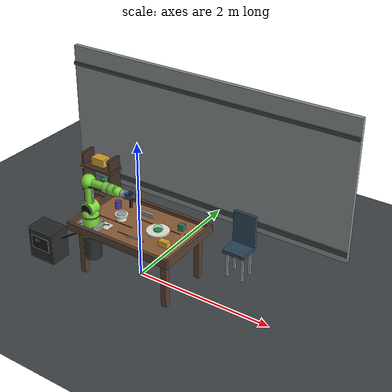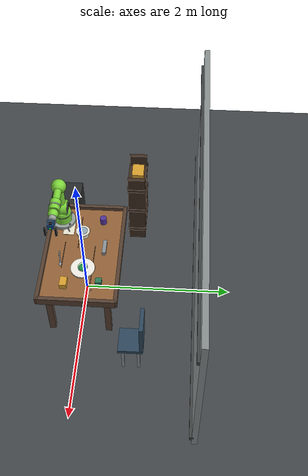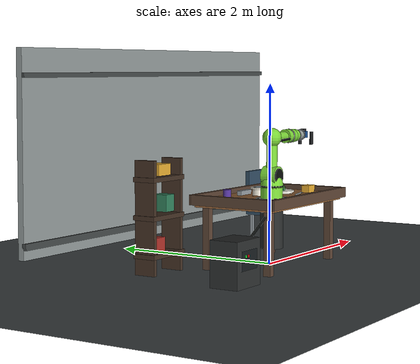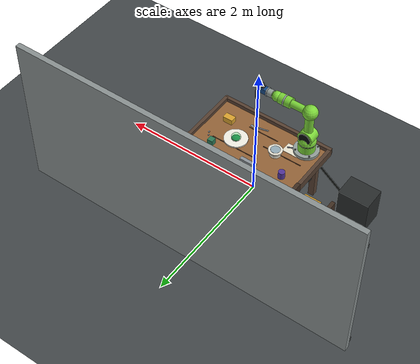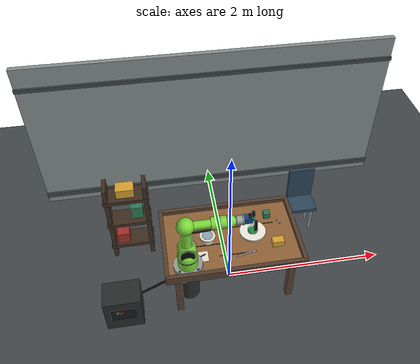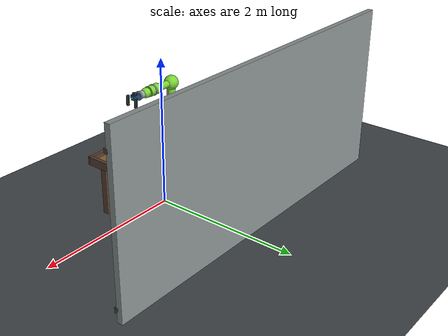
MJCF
<mujoco model="table_bowl_pick_place">
  <compiler angle="degree" inertiafromgeom="true"/>
  <option timestep="0.002" integrator="RK4" gravity="0 0 -9.81"/>

  <visual>
    <headlight diffuse="0.6 0.6 0.6" ambient="0.25 0.25 0.25" specular="0.2 0.2 0.2"/>
    <rgba haze="0.72 0.82 0.92 1"/>
    <global azimuth="145" elevation="-25" offwidth="1400" offheight="900"/>
  </visual>

  <asset>
    <texture name="grid" type="2d" builtin="checker" width="512" height="512" rgb1="0.22 0.24 0.25" rgb2="0.3 0.32 0.33"/>
    <material name="floor_mat" texture="grid" texrepeat="5 5" reflectance="0.0"/>
    <material name="table_mat" rgba="0.58 0.39 0.22 1"/>
    <material name="table_edge_mat" rgba="0.34 0.25 0.19 1"/>
    <material name="metal_mat" rgba="0.55 0.58 0.6 1" specular="0.35" shininess="0.55"/>
    <material name="fanuc_green" rgba="0.48 0.83 0.22 1" specular="0.28" shininess="0.45"/>
    <material name="fanuc_dark" rgba="0.035 0.045 0.04 1" specular="0.15" shininess="0.3"/>
    <material name="fanuc_joint_gray" rgba="0.58 0.62 0.6 1" specular="0.25" shininess="0.45"/>
    <material name="robot_blue" rgba="0.08 0.28 0.52 1" specular="0.25" shininess="0.5"/>
    <material name="rubber_mat" rgba="0.04 0.045 0.05 1"/>
    <material name="bowl_mat" rgba="0.92 0.9 0.84 1" specular="0.25" shininess="0.45"/>
    <material name="bowl_inner_mat" rgba="0.58 0.67 0.72 1"/>
    <material name="plate_mat" rgba="0.95 0.94 0.9 1" specular="0.2" shininess="0.35"/>
    <material name="target_mat" rgba="0.15 0.52 0.32 1"/>
    <material name="box_red" rgba="0.65 0.18 0.15 1"/>
    <material name="box_yellow" rgba="0.86 0.64 0.18 1"/>
    <material name="box_green" rgba="0.18 0.48 0.34 1"/>
    <material name="dark_wood" rgba="0.25 0.18 0.13 1"/>
    <material name="paper_mat" rgba="0.92 0.9 0.82 1"/>
    <material name="wall_mat" rgba="0.54 0.57 0.57 1"/>
  </asset>

  <worldbody>
    <geom name="floor" type="plane" size="4 4 0.05" material="floor_mat"/>
    <light name="key_light" pos="-1.8 -2.4 3.2" dir="0.5 0.65 -1" diffuse="0.95 0.95 0.9" specular="0.35 0.35 0.32"/>
    <light name="fill_light" pos="2 1.8 2.2" dir="-0.5 -0.4 -1" diffuse="0.35 0.42 0.48"/>

    <camera name="overview" pos="2.95 -3.85 2.55" xyaxes="0.80 0.60 0 -0.32 0.43 0.84" fovy="54"/>
    <camera name="front" pos="0 -2.2 1.15" xyaxes="1 0 0 0 0.37 0.93"/>

    <body name="background_wall" pos="0 1.55 0.82">
      <geom name="back_wall_panel" type="box" pos="0 0 0.48" size="2.35 0.035 1.08" material="wall_mat" contype="0" conaffinity="0"/>
      <geom name="wall_trim_low" type="box" pos="0 -0.04 -0.46" size="2.35 0.025 0.035" rgba="0.25 0.27 0.27 1" contype="0" conaffinity="0"/>
      <geom name="wall_trim_high" type="box" pos="0 -0.04 1.28" size="2.35 0.025 0.025" rgba="0.25 0.27 0.27 1" contype="0" conaffinity="0"/>
    </body>

    <body name="table" pos="0 0 0">
      <geom name="tabletop" type="box" pos="0 0 0.72" size="0.78 0.48 0.04" material="table_mat" friction="0.9 0.02 0.001"/>
      <geom name="front_edge" type="box" pos="0 -0.5 0.76" size="0.82 0.025 0.055" material="table_edge_mat"/>
      <geom name="back_edge" type="box" pos="0 0.5 0.76" size="0.82 0.025 0.055" material="table_edge_mat"/>
      <geom name="left_edge" type="box" pos="-0.8 0 0.76" size="0.025 0.5 0.055" material="table_edge_mat"/>
      <geom name="right_edge" type="box" pos="0.8 0 0.76" size="0.025 0.5 0.055" material="table_edge_mat"/>
      <geom name="leg_fl" type="box" pos="-0.68 -0.38 0.36" size="0.04 0.04 0.36" material="table_edge_mat"/>
      <geom name="leg_fr" type="box" pos="0.68 -0.38 0.36" size="0.04 0.04 0.36" material="table_edge_mat"/>
      <geom name="leg_bl" type="box" pos="-0.68 0.38 0.36" size="0.04 0.04 0.36" material="table_edge_mat"/>
      <geom name="leg_br" type="box" pos="0.68 0.38 0.36" size="0.04 0.04 0.36" material="table_edge_mat"/>
      <geom name="wood_grain_1" type="box" pos="-0.35 -0.08 0.763" size="0.28 0.004 0.003" rgba="0.36 0.24 0.14 1" contype="0" conaffinity="0"/>
      <geom name="wood_grain_2" type="box" pos="0.22 0.15 0.763" size="0.34 0.004 0.003" rgba="0.36 0.24 0.14 1" contype="0" conaffinity="0"/>
      <geom name="wood_grain_3" type="box" pos="0.05 -0.26 0.763" size="0.22 0.004 0.003" rgba="0.36 0.24 0.14 1" contype="0" conaffinity="0"/>
    </body>

    <body name="plate" pos="0.28 0.03 0.765">
      <geom name="plate_base" type="cylinder" pos="0 0 0.008" size="0.14 0.008" material="plate_mat" contype="1" conaffinity="1"/>
      <geom name="plate_rim" type="cylinder" pos="0 0 0.023" size="0.16 0.01" material="plate_mat" contype="0" conaffinity="0"/>
      <geom name="target_marker" type="cylinder" pos="0 0 0.035" size="0.055 0.003" material="target_mat" contype="0" conaffinity="0"/>
      <site name="success_target" pos="0 0 0.045" size="0.065" rgba="0.0 0.8 0.2 0.28"/>
    </body>

    <body name="bowl" pos="-0.28 -0.03 0.795">
      <freejoint name="bowl_free"/>
      <geom name="bowl_collision" type="cylinder" pos="0 0 0.035" size="0.075 0.035" material="bowl_mat" mass="0.08" friction="0.95 0.02 0.001"/>
      <geom name="bowl_rim" type="cylinder" pos="0 0 0.078" size="0.095 0.009" material="bowl_mat" contype="0" conaffinity="0"/>
      <geom name="bowl_inner" type="cylinder" pos="0 0 0.086" size="0.064 0.004" material="bowl_inner_mat" contype="0" conaffinity="0"/>
    </body>

    <body name="fanuc_cr7ial" pos="-0.55 -0.34 0.76">
      <geom name="fanuc_pedestal" type="cylinder" pos="0 0 -0.24" size="0.12 0.24" rgba="0.16 0.17 0.17 1"/>
      <geom name="fanuc_base_plate" type="cylinder" pos="0 0 0.015" size="0.17 0.03" material="fanuc_joint_gray" contype="0" conaffinity="0"/>
      <geom name="fanuc_base_green" type="cylinder" pos="0 0 0.095" size="0.115 0.075" material="fanuc_green" contype="0" conaffinity="0"/>
      <geom name="fanuc_base_black_ring" type="cylinder" pos="0 0 0.178" size="0.118 0.012" material="fanuc_dark" contype="0" conaffinity="0"/>
      <geom name="fanuc_bolt_1" type="cylinder" pos="0.105 0.105 0.052" size="0.012 0.006" material="fanuc_dark" contype="0" conaffinity="0"/>
      <geom name="fanuc_bolt_2" type="cylinder" pos="-0.105 0.105 0.052" size="0.012 0.006" material="fanuc_dark" contype="0" conaffinity="0"/>
      <geom name="fanuc_bolt_3" type="cylinder" pos="0.105 -0.105 0.052" size="0.012 0.006" material="fanuc_dark" contype="0" conaffinity="0"/>
      <geom name="fanuc_bolt_4" type="cylinder" pos="-0.105 -0.105 0.052" size="0.012 0.006" material="fanuc_dark" contype="0" conaffinity="0"/>

      <body name="fanuc_joint_1" pos="0 0 0.16">
        <joint name="j1" type="hinge" axis="0 0 1" range="-170 170" limited="true" damping="35" armature="0.05"/>
        <geom name="j1_cover" type="sphere" pos="0 0 0.03" size="0.12" material="fanuc_green" contype="0" conaffinity="0"/>
        <geom name="j1_flat_front" type="box" pos="0.072 -0.028 0.025" size="0.034 0.008 0.052" rgba="0.75 0.82 0.72 1" contype="0" conaffinity="0"/>

        <body name="fanuc_joint_2" pos="0 0 0.12">
          <joint name="j2" type="hinge" axis="0 1 0" range="-95 145" limited="true" damping="38" armature="0.05"/>
          <geom name="j2_cover" type="cylinder" pos="0 0 0" euler="90 0 0" size="0.105 0.08" material="fanuc_green" contype="0" conaffinity="0"/>
          <geom name="j2_dark_cap_l" type="cylinder" pos="0 0.086 0" euler="90 0 0" size="0.082 0.006" material="fanuc_dark" contype="0" conaffinity="0"/>
          <geom name="j2_dark_cap_r" type="cylinder" pos="0 -0.086 0" euler="90 0 0" size="0.082 0.006" material="fanuc_dark" contype="0" conaffinity="0"/>
          <geom name="upper_arm" type="capsule" fromto="0 0 0.03 0 0 0.405" size="0.058" material="fanuc_green" contype="0" conaffinity="0"/>
          <geom name="upper_arm_side_panel" type="box" pos="0.055 -0.017 0.22" size="0.014 0.008 0.12" rgba="0.72 0.8 0.68 1" contype="0" conaffinity="0"/>

          <body name="fanuc_joint_3" pos="0 0 0.405">
            <joint name="j3" type="hinge" axis="0 1 0" range="-160 170" limited="true" damping="35" armature="0.045"/>
            <geom name="j3_cover" type="sphere" pos="0 0 0" size="0.1" material="fanuc_green" contype="0" conaffinity="0"/>
            <geom name="j3_dark_ring" type="cylinder" pos="0 -0.012 0" euler="90 0 0" size="0.086 0.006" material="fanuc_dark" contype="0" conaffinity="0"/>
            <geom name="forearm" type="capsule" fromto="0 0 0 0.355 0 0" size="0.05" material="fanuc_green" contype="0" conaffinity="0"/>
            <geom name="forearm_cable" type="capsule" fromto="-0.018 -0.065 -0.04 0.26 -0.065 -0.025" size="0.012" material="fanuc_dark" contype="0" conaffinity="0"/>

            <body name="fanuc_joint_4" pos="0.355 0 0">
              <joint name="j4" type="hinge" axis="1 0 0" range="-190 190" limited="true" damping="20" armature="0.025"/>
              <geom name="j4_cover" type="cylinder" pos="0 0 0" euler="0 90 0" size="0.072 0.085" material="fanuc_green" contype="0" conaffinity="0"/>
              <geom name="j4_gray_band" type="cylinder" pos="0.004 0 0" euler="0 90 0" size="0.076 0.01" material="fanuc_joint_gray" contype="0" conaffinity="0"/>
              <geom name="wrist_link_1" type="capsule" fromto="0 0 0 0.13 0 0" size="0.04" material="fanuc_green" contype="0" conaffinity="0"/>

              <body name="fanuc_joint_5" pos="0.13 0 0">
                <joint name="j5" type="hinge" axis="0 1 0" range="-140 140" limited="true" damping="20" armature="0.025"/>
                <geom name="j5_cover" type="sphere" pos="0 0 0" size="0.068" material="fanuc_green" contype="0" conaffinity="0"/>
                <geom name="j5_dark_cap" type="cylinder" pos="0 -0.012 0" euler="90 0 0" size="0.055 0.006" material="fanuc_dark" contype="0" conaffinity="0"/>
                <geom name="wrist_link_2" type="capsule" fromto="0 0 0 0.095 0 0" size="0.035" material="fanuc_green" contype="0" conaffinity="0"/>

                <body name="fanuc_joint_6" pos="0.095 0 0">
                  <joint name="j6" type="hinge" axis="1 0 0" range="-360 360" limited="true" damping="14" armature="0.02"/>
                  <geom name="j6_flange" type="cylinder" pos="0 0 0" euler="0 90 0" size="0.052 0.035" material="fanuc_joint_gray" contype="0" conaffinity="0"/>
                  <geom name="j6_faceplate" type="cylinder" pos="0.04 0 0" euler="0 90 0" size="0.06 0.008" material="metal_mat" contype="0" conaffinity="0"/>

                  <body name="gripper_palm" pos="0.085 0 0">
                    <geom name="gripper_palm_geom" type="box" pos="0 0 0" size="0.055 0.04 0.035" material="robot_blue" contype="0" conaffinity="0"/>
                    <site name="gripper_site" pos="0.075 0 0" size="0.012" rgba="0.05 0.9 0.2 1"/>
                    <geom name="wrist_camera" type="box" pos="0.025 0 0.048" size="0.018 0.025 0.016" rgba="0.03 0.03 0.035 1" contype="0" conaffinity="0"/>

                    <body name="left_finger" pos="0.08 -0.07 0">
                      <joint name="left_finger_slide" type="slide" axis="0 1 0" range="0 0.04" limited="true" damping="4"/>
                      <geom name="left_finger_pad" type="box" pos="0 0 -0.04" size="0.017 0.014 0.07" material="rubber_mat" friction="1.2 0.04 0.001"/>
                    </body>

                    <body name="right_finger" pos="0.08 0.07 0">
                      <joint name="right_finger_slide" type="slide" axis="0 -1 0" range="0 0.04" limited="true" damping="4"/>
                      <geom name="right_finger_pad" type="box" pos="0 0 -0.04" size="0.017 0.014 0.07" material="rubber_mat" friction="1.2 0.04 0.001"/>
                    </body>
                  </body>
                </body>
              </body>
            </body>
          </body>
        </body>
      </body>
    </body>

    <body name="background_shelf" pos="-1.2 0.65 0">
      <geom name="shelf_left" type="box" pos="-0.24 0 0.62" size="0.025 0.12 0.6" material="dark_wood"/>
      <geom name="shelf_right" type="box" pos="0.24 0 0.62" size="0.025 0.12 0.6" material="dark_wood"/>
      <geom name="shelf_bottom" type="box" pos="0 0 0.22" size="0.28 0.13 0.025" material="dark_wood"/>
      <geom name="shelf_mid" type="box" pos="0 0 0.62" size="0.28 0.13 0.025" material="dark_wood"/>
      <geom name="shelf_top" type="box" pos="0 0 1.02" size="0.28 0.13 0.025" material="dark_wood"/>
      <geom name="red_bin" type="box" pos="-0.11 -0.015 0.33" size="0.08 0.08 0.08" material="box_red"/>
      <geom name="green_bin" type="box" pos="0.11 0.015 0.75" size="0.075 0.08 0.09" material="box_green"/>
      <geom name="yellow_bin" type="box" pos="0 0.01 1.11" size="0.11 0.08 0.06" material="box_yellow"/>
    </body>

    <body name="fanuc_controller" pos="-1.35 -0.38 0">
      <geom name="controller_box" type="box" pos="0 0 0.24" size="0.22 0.16 0.24" rgba="0.16 0.17 0.17 1"/>
      <geom name="controller_panel" type="box" pos="0 -0.162 0.28" size="0.15 0.004 0.1" rgba="0.08 0.1 0.11 1"/>
      <geom name="controller_green_button" type="cylinder" pos="-0.065 -0.168 0.32" euler="90 0 0" size="0.016 0.004" rgba="0.1 0.8 0.22 1"/>
      <geom name="controller_red_button" type="cylinder" pos="-0.02 -0.168 0.32" euler="90 0 0" size="0.016 0.004" rgba="0.85 0.06 0.05 1"/>
      <geom name="controller_cable" type="capsule" fromto="0.18 0.05 0.32 0.63 0.02 0.62" size="0.015" material="fanuc_dark" contype="0" conaffinity="0"/>
    </body>

    <body name="background_chair" pos="1.12 0.72 0">
      <geom name="chair_seat" type="box" pos="0 0 0.42" size="0.17 0.16 0.025" rgba="0.18 0.28 0.36 1"/>
      <geom name="chair_back" type="box" pos="0 0.14 0.68" size="0.17 0.025 0.24" rgba="0.18 0.28 0.36 1"/>
      <geom name="chair_leg_1" type="box" pos="-0.12 -0.1 0.21" size="0.018 0.018 0.21" material="metal_mat"/>
      <geom name="chair_leg_2" type="box" pos="0.12 -0.1 0.21" size="0.018 0.018 0.21" material="metal_mat"/>
      <geom name="chair_leg_3" type="box" pos="-0.12 0.1 0.21" size="0.018 0.018 0.21" material="metal_mat"/>
      <geom name="chair_leg_4" type="box" pos="0.12 0.1 0.21" size="0.018 0.018 0.21" material="metal_mat"/>
    </body>

    <body name="tabletop_background_objects" pos="0 0 0">
      <geom name="coffee_mug" type="cylinder" pos="-0.54 0.22 0.815" size="0.045 0.05" rgba="0.32 0.2 0.6 1"/>
      <geom name="small_box" type="box" pos="0.54 -0.19 0.805" size="0.07 0.045 0.04" material="box_yellow"/>
      <geom name="tool_block" type="box" pos="-0.08 0.28 0.79" size="0.11 0.025 0.025" material="metal_mat"/>
      <geom name="sensor_cube" type="box" pos="0.5 0.26 0.8" size="0.04 0.04 0.04" material="box_green"/>
      <geom name="paper_note" type="box" pos="-0.41 -0.24 0.766" size="0.11 0.075 0.002" material="paper_mat" contype="0" conaffinity="0"/>
      <geom name="pen_body" type="capsule" fromto="-0.51 -0.31 0.79 -0.34 -0.23 0.79" size="0.008" rgba="0.02 0.04 0.08 1" contype="0" conaffinity="0"/>
      <geom name="spoon_handle" type="capsule" fromto="0.02 -0.32 0.79 0.2 -0.28 0.79" size="0.009" material="metal_mat" contype="0" conaffinity="0"/>
      <geom name="spoon_bowl" type="ellipsoid" pos="0.23 -0.275 0.792" size="0.028 0.018 0.004" material="metal_mat" contype="0" conaffinity="0"/>
      <geom name="small_screw_1" type="cylinder" pos="0.64 0.12 0.769" size="0.011 0.005" material="metal_mat" contype="0" conaffinity="0"/>
      <geom name="small_screw_2" type="cylinder" pos="0.61 0.17 0.769" size="0.01 0.005" material="metal_mat" contype="0" conaffinity="0"/>
    </body>
  </worldbody>

  <actuator>
    <position name="j1_position" joint="j1" kp="90" ctrlrange="-170 170"/>
    <position name="j2_position" joint="j2" kp="110" ctrlrange="-95 145"/>
    <position name="j3_position" joint="j3" kp="90" ctrlrange="-160 170"/>
    <position name="j4_position" joint="j4" kp="55" ctrlrange="-190 190"/>
    <position name="j5_position" joint="j5" kp="55" ctrlrange="-140 140"/>
    <position name="j6_position" joint="j6" kp="35" ctrlrange="-360 360"/>
    <position name="left_finger_position" joint="left_finger_slide" kp="180" ctrlrange="0 0.04"/>
    <position name="right_finger_position" joint="right_finger_slide" kp="180" ctrlrange="0 0.04"/>
  </actuator>
</mujoco>
